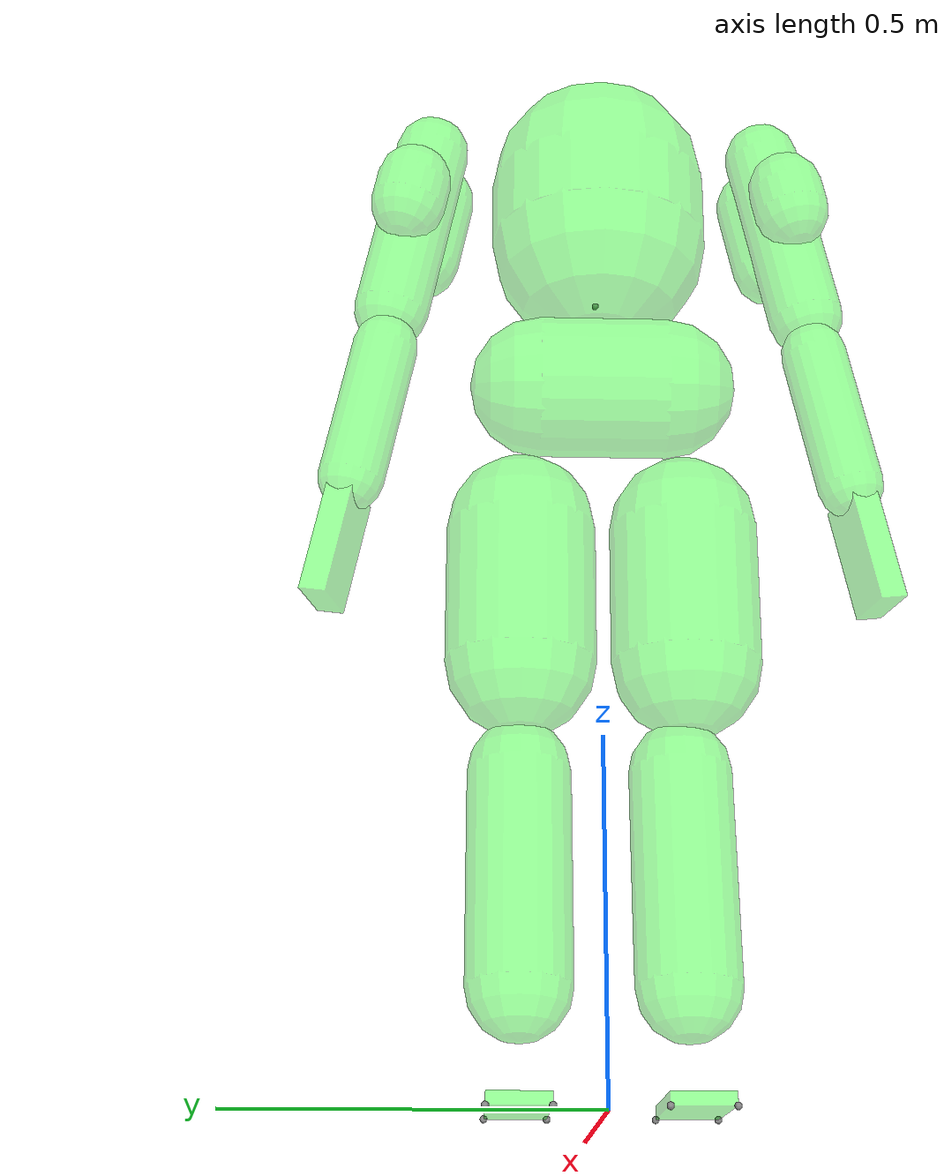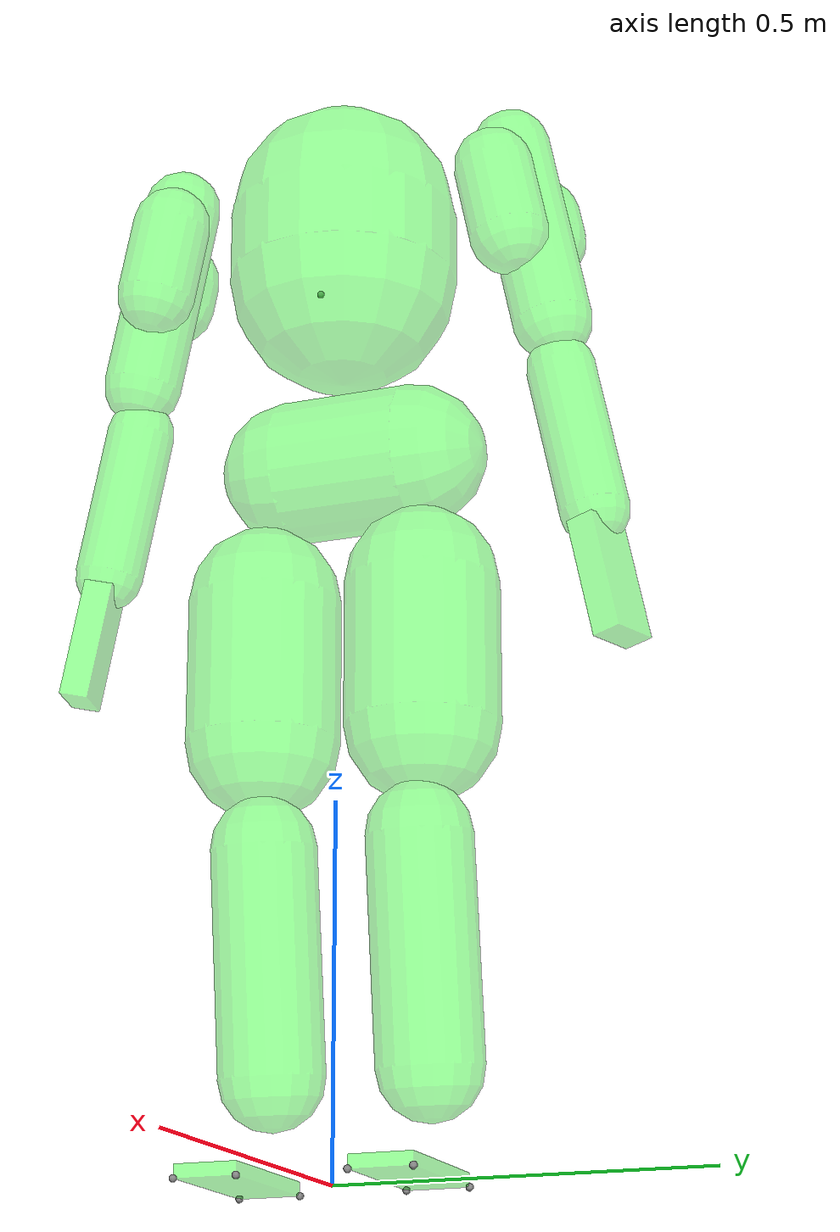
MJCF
<mujoco model="apptronik_apollo">
    <compiler angle="radian" eulerseq="zyx"/>

    <option timestep="0.005" integrator="Euler">
        <flag eulerdamp="disable" />
    </option>

   <statistic center="1 -0.8 1.1" extent=".35" />

    <default>
        <geom contype="0" conaffinity="0" condim="3" group="1"/>
        <equality solref="0.005 1" solimp="0.99 0.999 0.00001"/>
        <joint limited="true"/>
        <light castshadow="true" diffuse="0.8 0.8 0.8"/>
        <default class="active_adhesion">
            <geom rgba=".8 .5 .5 1" margin="0.010000" gap="0.010000"/>
        </default>
        <default class="visual">
            <geom type="mesh" contype="0" conaffinity="0" group="1"/>
            <default class="visual_dark">
                <geom rgba="0.0980392 0.0980392 0.0980392 1"/>
            </default>
            <default class="visual_light">
                <geom rgba="0.960784 0.960784 0.952941 1"/>
            </default>
        </default>
        <default class="collision">
            <!-- we turn these back on to be default -->
            <geom contype="1" conaffinity="1" group="2" condim="3" rgba="0 1 0 0.4"/>
        </default>
    </default>

    <worldbody>
        <light name="spotlight" mode="targetbodycom" target="torso_link" pos="0 -2 4" exponent="20"/>
        <body name="base_link" pos="0 0 1.0813">
        <camera name="track" pos="1.69 -2.93 1.232" xyaxes="0.866 0.500 0.000 -0.171 0.296 0.940" mode="trackcom"/>
            <body name="torso_oak_d_pro_w_rear_frame_link" pos="-0.164306 5e-08 0.0140886" euler="3.14 1.0472229 0" gravcomp="0">
                <inertial pos="0 0 0" mass="0.115" diaginertia="0.00014442322916666668 3.8901145833333344e-05 0.00012639458333333335"/>
            </body>
            <body name="torso_oak_d_pro_w_front_frame_link" pos="0.087306 -5e-08 0.0480886" euler="-3.77771e-14 1.0472 -4.97386e-14" gravcomp="0">
                <inertial pos="0 0 0" mass="0.115" diaginertia="0.00014442322916666668 3.8901145833333344e-05 0.00012639458333333335"/>
            </body>
            <inertial pos="-0.0466459 -2.50736e-05 -0.0721416" quat="0.661991 0.662086 0.248682 -0.248127" mass="7.43582" diaginertia="0.0633318 0.0512326 0.0281854"/>
            <joint name="floating_base" type="free" limited="false" actuatorfrclimited="false"/>
            <geom name="collision_capsule_body_pelvis" size="0.1 0.09" pos="-0.06 0 -0.08" quat="0.707388 0.706825 0 0" type="capsule" class="collision"/>
            <body name="torso_roll_link" pos="0.03 0 0.03125">
                <inertial pos="-0.0337439 7.47864e-09 -0.0199137" quat="0.5297 0.511275 -0.470427 0.486532" mass="0.824114" diaginertia="0.00159405 0.00123171 0.000760001"/>
                <joint name="torso_yaw" axis="0 0 -1" range="-0.829031 0.829031" actuatorfrcrange="-120 120" damping="11.7" frictionloss="0.7" armature="0.231424"/>
                <body name="torso_pitch_link" pos="0 0 0">
                    <inertial pos="-0.0120797 5.39687e-05 -0.00065376" quat="0.49026 0.489868 -0.50995 0.509534" mass="0.313137" diaginertia="0.000415493 0.000345069 9.17604e-05"/>
                    <joint name="torso_roll" axis="1 0 0" range="-0.20944 0.20944" actuatorfrcrange="-414 414" damping="0" frictionloss="4.53" armature="1.56493"/>
                    <body name="torso_link" pos="0 0 0">
                        <inertial pos="-0.0484952 0.00143204 0.185535" quat="0.702792 0.0157426 -6.68569e-05 0.711221" mass="19.3408" diaginertia="0.303595 0.272287 0.22035"/>
                        <joint name="torso_pitch" axis="0 1 0" range="-0.305433 1.35263" actuatorfrcrange="-315 315" damping="0" frictionloss="13.15" armature="0.970692"/>
                        <site name="imu" pos="0.037 5.54705e-16 0.093624" euler="0.000000 1.570800 3.141590"/>
                        <geom name="collision_cylinder_torso" size="0.16 0.05" pos="-0.045 0 0.2" type="capsule" class="collision"/>
                        <body name="neck_yaw_link" pos="-0.0303298 0 0.32841" quat="0.991445 0 0.130526 0">
                            <inertial pos="-0.0110616 0.000438589 0.066541" quat="0.715974 -0.0707674 -0.0795701 0.689958" mass="0.707753" diaginertia="0.00278981 0.002738 0.00071974"/>
                            <body name="neck_roll_link" pos="-0.025 0 0.2" quat="1.32679e-06 -1 0 0">
                                <inertial pos="9.66662e-05 -0.000233736 -0.000463806" quat="0.000426355 0.703652 0.00178423 0.710542" mass="0.0189001" diaginertia="1.89727e-06 1.24254e-06 1.0322e-06"/>
                                <body name="neck_pitch_link" quat="1.17527e-06 0.885799 6.15724e-07 -0.464069">
                                    <inertial pos="0.0412474 -0.00081671 0.0152493" quat="0.350337 0.613318 0.617311 0.346457" mass="1.78084" diaginertia="0.0135957 0.0109432 0.00697581"/>
                                </body>
                            </body>
                        </body>
                        <body name="l_shoulder_aa_link" pos="-0.05 0.2 0.32" euler="0 0 0.2">
                            <inertial pos="0.000169922 0.0025177 -0.0190065" quat="0.710165 -0.0144759 0.023056 0.703508" mass="0.0980048" diaginertia="4.61576e-05 3.97046e-05 1.43504e-05"/>
                            <body name="l_shoulder_ie_link" pos="0 0 0">
                                <inertial pos="-0.00799772 0.0154729 -0.0231746" quat="0.0914838 0.586016 -0.671384 0.444364" mass="0.451281" diaginertia="0.00069896 0.000628486 0.000278066"/>
                                <body name="l_shoulder_fe_link" pos="0.0104822 0.03912 0" quat="0.991445 0 0 -0.130526">
                                    <inertial pos="0.00453031 0.00134632 -0.143556" quat="0.707095 0.0140891 -0.00274087 0.706973" mass="3.51271" diaginertia="0.0284589 0.0232812 0.00763948"/>
                                    <joint name="l_shoulder_fe" axis="0 1 0" range="-2.18166 0.610865" actuatorfrcrange="-114 114" damping="0" frictionloss="1.94" armature="0.112768"/>
                                    <geom name="collision_capsule_body_l_arm_1" size="0.055 0.14" pos="-0.005 0.01 -0.16" type="capsule" class="collision"/>
                                    <geom name="collision_capsule_body_l_arm_2" size="0.055 0.055" pos="0.05 0.005 -0.125" type="capsule" class="collision"/>
                                    <geom name="collision_capsule_body_l_arm_3" size="0.055 0.02" pos="-0.06 0.0025 -0.13" type="capsule" class="collision"/>
                                    <body name="l_elbow_fe_link" pos="0.025 0 -0.315">
                                        <inertial pos="-0.0407636 -0.000100019 -0.0277184" quat="0.446501 0.557407 0.539502 0.445951" mass="0.947642" diaginertia="0.00105876 0.000944065 0.00076124"/>
                                        <joint name="l_elbow_fe" axis="0 1 0" range="-2.61799 0.174533" actuatorfrcrange="-114 114" damping="0" frictionloss="2.55" armature="0.102645"/>
                                        <body name="l_wrist_roll_link" pos="-0.04 0 -0.06" quat="0.707105 0 0 0.707108">
                                            <inertial pos="0.0088493 0.000434657 -0.071867" quat="0.701782 -0.0503482 -0.0435035 0.709278" mass="0.694478" diaginertia="0.00294512 0.00284275 0.000723985"/>
                                            <geom name="collision_cylinder_l_arm" size="0.04755 0.1076" pos="0 0 -0.1" type="capsule" class="collision"/>
                                            <body name="l_wrist_yaw_link" pos="0.025 0 -0.2">
                                                <inertial pos="-9.66662e-05 0.000233736 -0.000463806" quat="-0.00178423 0.710542 -0.000426355 0.703652" mass="0.0189001" diaginertia="1.89727e-06 1.24254e-06 1.0322e-06"/>
                                                <body name="l_wrist_pitch_link" quat="0.707105 0 0 -0.707108">
                                                    <inertial pos="0.0071177 -0.038442 -0.0669519" quat="0.614861 0.00892233 0.0323416 0.787921" mass="0.806883" diaginertia="0.00459474 0.00452816 0.00206219"/>
                                                    <frame pos="0.0296624 -0.053984 -0.172686" euler="0 0 -45">
                                                    </frame>
                                                    <frame pos="0.00814998 -0.0526507 -0.176389" euler="0 0 -45">
                                                    </frame>
                                                    <frame pos="-0.0139914 -0.0531239 -0.173755" euler="0 0 -45">
                                                    </frame>
                                                    <frame pos="-0.0330569 -0.0546993 -0.167156" euler="0 0 -45">
                                                    </frame>
                                                    <geom name="collision_l_hand_plate" size="0.041 0.02 0.083" pos="0.00749988 -0.025 -0.112" type="box" class="collision"/>
                                                </body>
                                            </body>
                                        </body>
                                    </body>
                                </body>
                            </body>
                        </body>
                        <body name="r_shoulder_aa_link" pos="-0.05 -0.2 0.32"  euler="0 0 -0.2">
                            <inertial pos="0.000169922 0.0025177 -0.0190065" quat="0.710165 -0.0144759 0.023056 0.703508" mass="0.0980048" diaginertia="4.61576e-05 3.97046e-05 1.43504e-05"/>
                            <body name="r_shoulder_ie_link" pos="0 0 0">
                                <inertial pos="-0.00800045 -0.0154894 -0.0231814" quat="0.583857 0.088589 -0.445504 0.672897" mass="0.451079" diaginertia="0.000700361 0.00062725 0.000277886"/>
                                <body name="r_shoulder_fe_link" pos="0.0104822 -0.03912 0" quat="0.991445 0 0 0.130526">
                                    <inertial pos="0.00420186 -0.00125575 -0.142983" quat="0.7032 -0.00225527 0.011754 0.710892" mass="3.50359" diaginertia="0.0282519 0.0230724 0.00763457"/>
                                    <joint name="r_shoulder_fe" axis="0 1 0" range="-2.18166 0.610865" actuatorfrcrange="-114 114" damping="0" frictionloss="1.94" armature="0.112768"/>
                                    <geom name="collision_capsule_body_r_arm_1" size="0.055 0.14" pos="-0.005 -0.01 -0.16" type="capsule" class="collision"/>
                                    <geom name="collision_capsule_body_r_arm_2" size="0.055 0.055" pos="0.05 -0.005 -0.125" type="capsule" class="collision"/>
                                    <geom name="collision_capsule_body_r_arm_3" size="0.055 0.02" pos="-0.06 -0.0025 -0.13" type="capsule" class="collision"/>
                                    <body name="r_elbow_fe_link" pos="0.025 0 -0.315">
                                        <inertial pos="-0.0407591 0.000134025 -0.0277185" quat="0.458533 0.527215 0.568785 0.433907" mass="0.947653" diaginertia="0.00105948 0.000943838 0.000761313"/>
                                        <joint name="r_elbow_fe" axis="0 1 0" range="-2.61799 0.174533" actuatorfrcrange="-114 114" damping="0" frictionloss="2.55" armature="0.102645"/>
                                        <body name="r_wrist_roll_link" pos="-0.04 0 -0.06" quat="0.707105 0 0 -0.707108">
                                            <inertial pos="0.00887138 -0.000263913 -0.0718159" quat="0.698707 -0.0449538 -0.0486448 0.712336" mass="0.695137" diaginertia="0.00294733 0.00284457 0.000724756"/>
                                            <geom name="collision_cylinder_r_arm" size="0.04755 0.1076" pos="0 0 -0.1" type="capsule" class="collision"/>
                                            <body name="r_wrist_yaw_link" pos="0.025 0 -0.2" quat="1.32679e-06 0 0 -1">
                                                <inertial pos="9.66662e-05 0.000233736 -0.000463806" quat="-0.00044002 0.703652 -0.00179716 0.710542" mass="0.0189001" diaginertia="1.89727e-06 1.24254e-06 1.0322e-06"/>
                                                <body name="r_wrist_pitch_link" quat="0.707105 0 0 -0.707108">
                                                    <inertial pos="0.0181202 0.0388729 -0.0688824" quat="0.630263 -0.0221958 -0.0501406 0.774443" mass="0.806683" diaginertia="0.00526208 0.00452156 0.0026899"/>
                                                    <geom name="collision_r_hand_plate" size="0.041 0.02 0.083" pos="0.00749988 0.025 -0.112" type="box" class="collision"/>
                                                </body>
                                            </body>
                                        </body>
                                    </body>
                                </body>
                            </body>
                        </body>
                    </body>
                </body>
            </body>
            <body name="l_hip_ie_link" pos="-0.02 0.11 -0.16875" quat="0.957662 0.126078 -0.256605 0.0337826">
                <inertial pos="-0.0275726 0.000155527 0.0265849" quat="-0.0182885 0.43376 -0.029543 0.900358" mass="1.49972" diaginertia="0.00446385 0.00343018 0.00205254"/>
                <joint name="l_hip_ie" axis="0 0 1" range="-0.567232 1.09083" actuatorfrcrange="-120 120" damping="0" frictionloss="7.95" armature="0.231424"/>
                <body name="l_hip_aa_link" pos="0 0 0">
                    <inertial pos="0.000193883 0.00068757 0.00240456" quat="0.488822 0.400587 -0.484645 0.604733" mass="0.429858" diaginertia="0.000370659 0.000322451 0.000129015"/>
                    <joint name="l_hip_aa" axis="1 0 0" range="-0.218166 0.741765" actuatorfrcrange="-494 494" damping="0" frictionloss="7.0" armature="0.399395"/>
                    <body name="l_hip_fe_link" quat="0.957662 -0.126079 0.256605 -0.0337828">
                        <inertial pos="0.0065559 0.00346415 -0.207233" quat="0.864334 0.00804176 0.0489557 0.500466" mass="10.7833" diaginertia="0.124113 0.120556 0.0499696"/>
                        <joint name="l_hip_fe" axis="0 1 0" range="-1.85005 0.476475" actuatorfrcrange="-342 342" damping="20.31" frictionloss="21.06" armature="0.187096"/>
                        <geom name="collision_capsule_body_l_thigh" size="0.105 0.1" pos="0 0.005 -0.215" type="capsule" class="collision"/>
                        <body name="l_knee_fe_link" pos="-0.05 0 -0.425">
                            <inertial pos="0.043534 0.00505054 -0.152417" quat="0.917057 0.00954505 0.0113608 0.398479" mass="4.57515" diaginertia="0.0639569 0.0630895 0.0108036"/>
                            <joint name="l_knee_fe" axis="0 1 0" range="0 2.61799" actuatorfrcrange="-336 336" damping="0" frictionloss="7.7" armature="0.292264"/>
                            <geom name="collision_capsule_body_l_shin" size="0.071 0.15" pos="0.0476 0.0061 -0.19" quat="0.998048 0 0.0624593 0" type="capsule" class="collision"/>
                            <body name="l_ankle_ie_link" pos="0.05 0 -0.425" quat="0.987672 0.0864102 -0.130029 0.0113761">
                                <inertial pos="0.00995038 9.93144e-05 0.000832075" quat="0.692933 0.691803 0.145013 -0.14221" mass="0.12478" diaginertia="4.80038e-05 4.18024e-05 1.66067e-05"/>
                                <joint name="l_ankle_ie" axis="1 0 0" range="-0.654498 0.305433" actuatorfrcrange="-120 120" damping="0" frictionloss="0.89" armature="0.121874"/>
                                <body name="l_foot_link" quat="0.965926 0 0.258819 0">
                                    <frame pos="0.0614891 -0.00342931 -0.0265273" quat="0.987443 -0.0797175 -0.132426 -0.0326442">
                                        <site name="l_foot_fr" pos="0.1 0.0425 -0.0215"/>
                                        <site name="l_foot_br" pos="-0.1 0.0425 -0.0215"/>
                                        <site name="l_foot_fl" pos="0.1 -0.0425 -0.0215"/>
                                        <site name="l_foot_bl" pos="-0.1 -0.0425 -0.0215"/>
                                    </frame>
                                    <inertial pos="0.056607 -0.00200339 -0.0304112" quat="0.432893 0.587516 0.510475 0.454802" mass="1.1808" diaginertia="0.0088235 0.00838261 0.00210633"/>
                                    <joint name="l_ankle_pd" axis="0 1 0" range="-1.5708 0.436332" actuatorfrcrange="-150 150" damping="9.11" frictionloss="1.87" armature="0.205456"/>
                                    <geom name="collision_l_sole" size="0.1 0.0425 0.009" pos="0.0646931 -0.00550529 -0.03843" quat="0.987443 -0.0797175 -0.132426 -0.0326442" type="box" class="collision"/>
                                </body>
                            </body>
                        </body>
                    </body>
                </body>
            </body>
            <body name="r_hip_ie_link" pos="-0.02 -0.11 -0.16875" quat="0.957662 -0.126078 -0.256605 -0.0337826">
                <inertial pos="-0.0275542 -0.000156081 0.0265869" quat="0.0347714 0.433956 0.0469856 0.899036" mass="1.49972" diaginertia="0.00446281 0.00343307 0.00204473"/>
                <joint name="r_hip_ie" axis="0 0 1" range="-1.09083 0.567232" actuatorfrcrange="-120 120" damping="0" frictionloss="7.95" armature="0.231424"/>
                <body name="r_hip_aa_link" pos="0 0 0">
                    <inertial pos="0.000193891 -0.000687548 0.00240456" quat="0.469753 0.583843 -0.513458 0.418115" mass="0.429858" diaginertia="0.000369398 0.000323696 0.000129031"/>
                    <joint name="r_hip_aa" axis="1 0 0" range="-0.741765 0.218166" actuatorfrcrange="-494 494" damping="0" frictionloss="7.0" armature="0.399396"/>
                    <body name="r_hip_fe_link" quat="0.957662 0.126079 0.256605 0.0337828">
                        <inertial pos="0.00662296 -0.00380822 -0.207131" quat="0.493002 0.049361 0.00782621 0.868591" mass="10.7924" diaginertia="0.124314 0.120603 0.0499318"/>
                        <joint name="r_hip_fe" axis="0 1 0" range="-1.85005 0.476475" actuatorfrcrange="-342 342" damping="20.31" frictionloss="21.06" armature="0.187096"/>
                        <geom name="collision_capsule_body_r_thigh" size="0.105 0.1" pos="0 -0.005 -0.215" type="capsule" class="collision"/>
                        <body name="r_knee_fe_link" pos="-0.05 0 -0.425">
                            <inertial pos="0.0432854 -0.00516245 -0.152442" quat="0.399848 0.0111994 0.00899692 0.916469" mass="4.57434" diaginertia="0.063915 0.0630953 0.0107961"/>
                            <joint name="r_knee_fe" axis="0 1 0" range="0 2.61799" actuatorfrcrange="-336 336" damping="0" frictionloss="7.7" armature="0.292264"/>
                            <geom name="collision_capsule_body_r_shin" size="0.071 0.15" pos="0.0476 0.0061 -0.19" quat="0.998048 0 0.0624593 0" type="capsule" class="collision"/>
                            <body name="r_ankle_ie_link" pos="0.05 0 -0.425" quat="0.987672 -0.0864102 -0.130029 -0.0113761">
                                <inertial pos="0.00995037 -9.921e-05 0.000832071" quat="0.69181 0.692928 0.142207 -0.145006" mass="0.12478" diaginertia="4.80035e-05 4.18021e-05 1.66065e-05"/>
                                <joint name="r_ankle_ie" axis="1 0 0" range="-0.305433 0.654498" actuatorfrcrange="-120 120" damping="0" frictionloss="0.89" armature="0.121874"/>
                                <body name="r_foot_link" quat="0.965926 0 0.258819 0">
                                    <frame pos="0.0614891 0.00342931 -0.0265273" quat="0.987443 0.0797175 -0.132426 0.0326442">
                                        <site name="r_foot_fr" pos="0.1 0.0425 -0.0215"/>
                                        <site name="r_foot_br" pos="-0.1 0.0425 -0.0215"/>
                                        <site name="r_foot_fl" pos="0.1 -0.0425 -0.0215"/>
                                        <site name="r_foot_bl" pos="-0.1 -0.0425 -0.0215"/>
                                    </frame>
                                    <inertial pos="0.056607 0.00200339 -0.0304112" quat="0.414902 0.606299 0.487904 0.471389" mass="1.1808" diaginertia="0.00883289 0.00837251 0.00210704"/>
                                    <joint name="r_ankle_pd" axis="0 1 0" range="-1.5708 0.436332" actuatorfrcrange="-150 150" damping="9.11" frictionloss="1.87" armature="0.205456"/>
                                    <geom name="collision_r_sole" size="0.1 0.0425 0.009" pos="0.0646931 0.00550529 -0.03843" quat="0.987443 0.0797175 -0.132426 0.0326442" type="box" class="collision"/>
                                </body>
                            </body>
                        </body>
                    </body>
                </body>
            </body>
        </body>
        <body name="world_link" pos="0 0 0"/>
        <light directional="false" diffuse="0.2 0.2 0.2" pos="0 0 3" dir="0 0 -1" mode="trackcom"/>
    </worldbody>

    <sensor>
        <framequat name="IMU-orientation" objtype="site" objname="imu"/>
        <gyro name="IMU-angular-velocity" site="imu" noise="5e-4" cutoff="54.9"/>
        <accelerometer name="IMU-linear-acceleration" site="imu" noise="1e-4" cutoff="157"/>
        <magnetometer name="IMU-magnetometer" site="imu"/>
    </sensor>

    <actuator>

        <position name="torso_yaw" kp="600" kv="60" joint="torso_yaw" ctrlrange="-0.829031 0.829031" forcerange="-120 120"/>
        <position name="torso_roll" kp="2052" kv="165" joint="torso_roll" ctrlrange="-0.20944 0.20944" forcerange="-414 414"/>
        <position name="torso_pitch" kp="1525" kv="142" joint="torso_pitch" ctrlrange="-0.305433 1.35263" forcerange="-315 315"/>

        <position name="l_shoulder_fe" kp="277" kv="21" joint="l_shoulder_fe" ctrlrange="-2.18166 0.610865" forcerange="-114 114"/>
        <position name="l_elbow_fe" kp="312" kv="24" joint="l_elbow_fe" ctrlrange="-2.61799 0.174533" forcerange="-114 114"/>
        <position name="r_shoulder_fe" kp="277" kv="21" joint="r_shoulder_fe" ctrlrange="-2.18166 0.610865" forcerange="-114 114"/>
        <position name="r_elbow_fe" kp="312" kv="24" joint="r_elbow_fe" ctrlrange="-2.61799 0.174533" forcerange="-114 114"/>

        <position name="l_hip_ie" kp="595" kv="171" joint="l_hip_ie" ctrlrange="-0.567232 1.09083" forcerange="-120 120"/>
        <position name="l_hip_aa" kp="1880" kv="153" joint="l_hip_aa" ctrlrange="-0.218166 0.741765" forcerange="-494 494"/>
        <position name="l_hip_fe" kp="1047" kv="92" joint="l_hip_fe" ctrlrange="-1.85005 0.476475" forcerange="-342 342"/>

        <position name="l_knee_fe" kp="606" kv="46" joint="l_knee_fe" ctrlrange="0 2.61799" forcerange="-336 336"/>

        <position name="l_ankle_ie" kp="420" kv="11" joint="l_ankle_ie" ctrlrange="-0.654498 0.305433" forcerange="-120 120"/>
        <position name="l_ankle_pd" kp="882" kv="21" joint="l_ankle_pd" ctrlrange="-1.5708 0.436332" forcerange="-150 150"/>

        <position name="r_hip_ie" kp="595" kv="171" joint="r_hip_ie" ctrlrange="-1.09083 0.567232" forcerange="-120 120"/>
        <position name="r_hip_aa" kp="1880" kv="153" joint="r_hip_aa" ctrlrange="-0.741765 0.218166" forcerange="-494 494"/>
        <position name="r_hip_fe" kp="1047" kv="92" joint="r_hip_fe" ctrlrange="-1.85005 0.476475" forcerange="-342 342"/>

        <position name="r_knee_fe" kp="606" kv="46" joint="r_knee_fe" ctrlrange="0 2.61799" forcerange="-336 336"/>

        <position name="r_ankle_ie" kp="420" kv="11" joint="r_ankle_ie" ctrlrange="-0.305433 0.654498" forcerange="-120 120"/>
        <position name="r_ankle_pd" kp="882" kv="21" joint="r_ankle_pd" ctrlrange="-1.5708 0.436332" forcerange="-150 150"/>

    </actuator>

    <keyframe>
        <key name="stand"
            qpos="
            0.0 0.0 1.01597
            1.0 0.0 0.0 0.0
            0.0 0.0 0.0 0.0 -0.4 0.0 -0.4
            0.08 0.1 -0.477 1.033 -0.03 -0.58 -0.08 -0.1 -0.477 1.033 0.03 -0.58"
            ctrl="
            0.0 0.0 0.0
            0.0 -0.4 0.0 -0.4
            0.08 0.1 -0.477 1.033 -0.03 -0.58 -0.08 -0.1 -0.477 1.033 0.03 -0.58" />
    </keyframe>
</mujoco>
